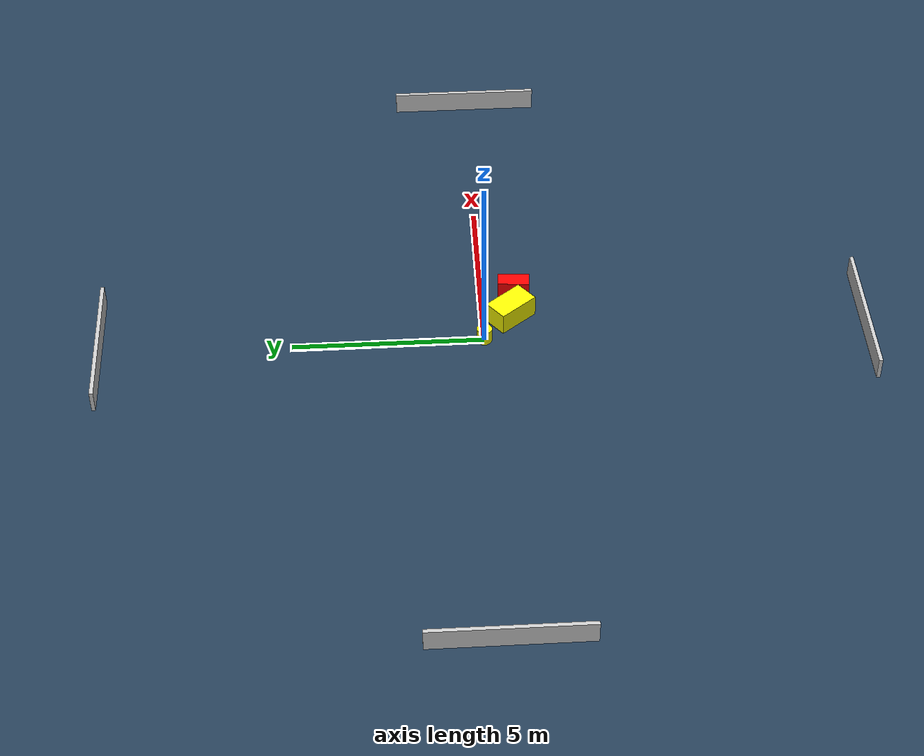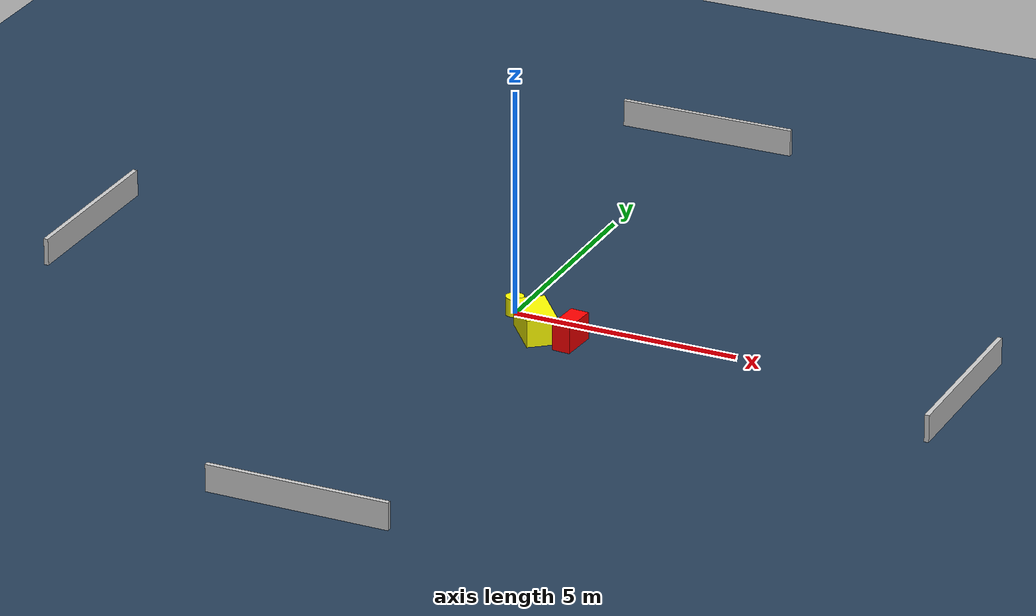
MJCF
<?xml version="1.0" ?>
<mujoco model="generated_environment">
  <option timestep="0.01" integrator="RK4" cone="elliptic"/>
  <default>
    <geom density="1"/>
  </default>
  <asset>
    <texture builtin="gradient" height="3072" name="skybox" rgb1="0.3 0.5 0.7" rgb2="0 0 0" type="skybox" width="512"/>
    <texture builtin="checker" height="300" name="groundplane" rgb1="0.2 0.3 0.4" rgb2="0.1 0.2 0.3" type="2d" width="300"/>
    <material name="groundplane" reflectance="0.2" texrepeat="5 5" texture="groundplane"/>
  </asset>
  <worldbody>
    <light dir="0 0 -1" directional="true" pos="0 0 1.5"/>
    <geom condim="3" friction="0.5 0.005 0.001" material="groundplane" name="floor" pos="0 0 0" size="0 0 0.05" type="plane"/>
    <body name="walls">
      <geom name="wall_1" condim="4" pos="-10.0 0.0 0.3" rgba="0.800000011920929 0.800000011920929 0.800000011920929 1.0" size="0.05 2.0 0.3" type="box"/>
      <geom name="wall_2" condim="4" pos="10.0 0.0 0.3" rgba="0.800000011920929 0.800000011920929 0.800000011920929 1.0" size="0.05 2.0 0.3" type="box"/>
      <geom name="wall_3" condim="4" pos="0.0 -10.0 0.3" rgba="0.800000011920929 0.800000011920929 0.800000011920929 1.0" size="2.0 0.05 0.3" type="box"/>
      <geom name="wall_4" condim="4" pos="0.0 10.0 0.3" rgba="0.800000011920929 0.800000011920929 0.800000011920929 1.0" size="2.0 0.05 0.3" type="box"/>
    </body>
    <body name="robot">
      <joint name="joint_x" type="slide" pos="0 0 0" axis="1 0 0"/>
      <joint name="joint_y" type="slide" pos="0 0 0" axis="0 1 0"/>
      <geom name="robot" type="cylinder" pos="0.0 0.0 0.2" size="0.2 0.2 0.0" mass="5.0" friction="1.0 0.005 0.0001" condim="4" rgba="1.0 1.0 0.0 1.0"/>
    </body>
    <body name="obstacle_1_movable">
      <geom name="obstacle_1_movable" condim="4" pos="0.8217936164972641 -0.7451241965766271 0.3" euler="0 0 218.50254442025994" friction="0.0 0.005 0.001" rgba="1.0 1.0 0.0 1.0" size="0.3299071919358333 0.5696826768279281 0.3" type="box" mass="0.1"/>
      <joint type="free"/>
    </body>
    <body name="obstacle_2_static">
      <geom name="obstacle_2_static" condim="4" pos="1.6647700988571241 -0.8680773092492863 0.3" euler="0 0 266.20299276575133" friction="0.0 0.005 0.001" rgba="1.0 0.0 0.0 1.0" size="0.4162922042755245 0.20431161578753576 0.3" type="box"/>
    </body>
  </worldbody>
  <actuator>
    <motor name="actuator_x" joint="joint_x" gear="1" ctrlrange="-1 1"/>
    <motor name="actuator_y" joint="joint_y" gear="1" ctrlrange="-1 1"/>
  </actuator>
</mujoco>
